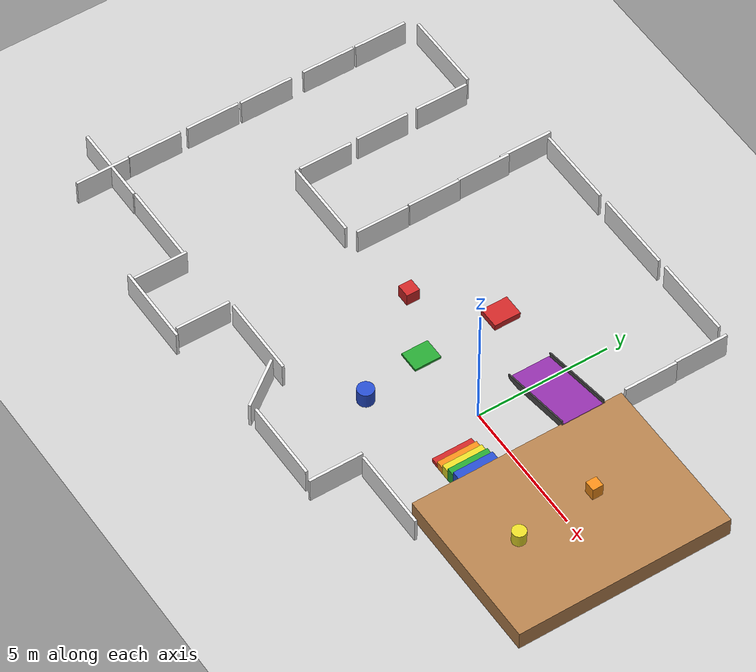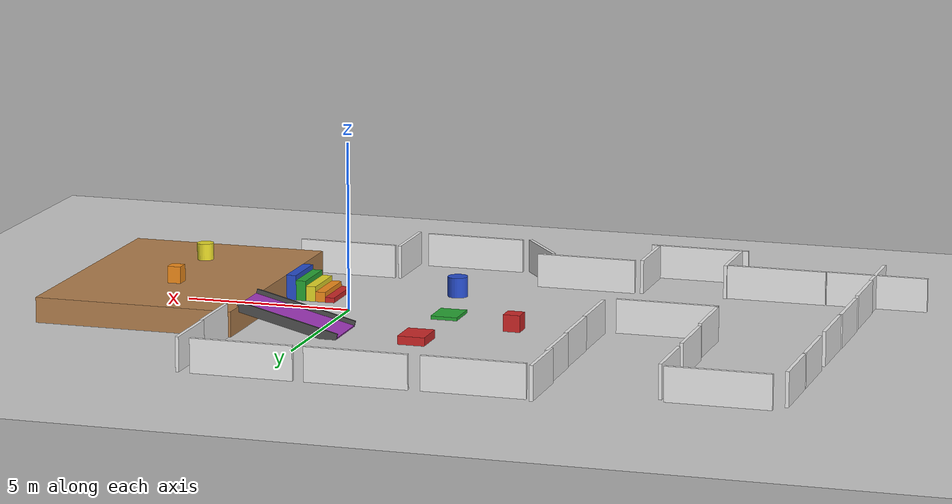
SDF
<sdf version="1.7">
 <world name="two_floor_test">
  <physics type="ode">
   <max_step_size>0.002</max_step_size>
   <real_time_update_rate>500</real_time_update_rate>
   <real_time_factor>1</real_time_factor>
   <type>world</type>
   <iters>500</iters>
  </physics>
  <light name="sun" type="directional">
   <pose>0 0 10 0 -0 0</pose>
   <diffuse>0.8 0.8 0.8 1</diffuse>
   <specular>0.2 0.2 0.2 1</specular>
   <attenuation>
    <range>1000</range>
    <constant>0.9</constant>
    <linear>0.01</linear>
    <quadratic>0.001</quadratic>
   </attenuation>
   <direction>-0.5 0.1 -0.9</direction>
   <spot><inner_angle>0</inner_angle><outer_angle>0</outer_angle><falloff>0</falloff></spot>
  </light>
  <model name="ground_plane">
   <static>1</static>
   <link name="link">
    <collision name="collision">
     <geometry><plane><normal>0 0 1</normal><size>20 20</size></plane></geometry>
     <surface><friction><ode><mu>100</mu><mu2>50</mu2></ode></friction></surface>
    </collision>
    <visual name="visual">
     <cast_shadows>0</cast_shadows>
     <geometry><plane><normal>0 0 1</normal><size>20 20</size></plane></geometry>
     <material>
      <script><uri>file://media/materials/scripts/gazebo.material</uri><name>Gazebo/Grey</name></script>
     </material>
    </visual>
   </link>
  </model>
  <model name="second_floor">
   <static>1</static>
   <pose>5.19898 0 0.375 0 -0 0</pose>
   <link name="link">
    <collision name="collision">
     <geometry><box><size>6 8 0.75</size></box></geometry>
     <surface><friction><ode><mu>100</mu><mu2>50</mu2></ode></friction></surface>
    </collision>
    <visual name="visual">
     <geometry><box><size>6 8 0.75</size></box></geometry>
     <material>
      <script><uri>file://media/materials/scripts/gazebo.material</uri><name>Gazebo/Wood</name></script>
     </material>
    </visual>
   </link>
  </model>
  <model name="stair_step_1">
   <static>1</static>
   <pose>0.865636 -1.50044 0.075 0 -0 0</pose>
   <link name="link">
    <collision name="collision">
     <geometry><box><size>0.3 1.5 0.15</size></box></geometry>
     <surface><friction><ode><mu>100</mu><mu2>50</mu2></ode></friction></surface>
    </collision>
    <visual name="visual">
     <geometry><box><size>0.3 1.5 0.15</size></box></geometry>
     <material>
      <script><uri>file://media/materials/scripts/gazebo.material</uri><name>Gazebo/Red</name></script>
     </material>
    </visual>
   </link>
  </model>
  <model name="stair_step_2">
   <static>1</static>
   <pose>1.14738 -1.5 0.15 0 -0 0</pose>
   <link name="link">
    <collision name="collision">
     <geometry><box><size>0.3 1.5 0.3</size></box></geometry>
     <surface><friction><ode><mu>100</mu><mu2>50</mu2></ode></friction></surface>
    </collision>
    <visual name="visual">
     <geometry><box><size>0.3 1.5 0.3</size></box></geometry>
     <material>
      <script><uri>file://media/materials/scripts/gazebo.material</uri><name>Gazebo/Orange</name></script>
     </material>
    </visual>
   </link>
  </model>
  <model name="stair_step_3">
   <static>1</static>
   <pose>1.44603 -1.5 0.225 0 -0 0</pose>
   <link name="link">
    <collision name="collision">
     <geometry><box><size>0.3 1.5 0.45</size></box></geometry>
     <surface><friction><ode><mu>100</mu><mu2>50</mu2></ode></friction></surface>
    </collision>
    <visual name="visual">
     <geometry><box><size>0.3 1.5 0.45</size></box></geometry>
     <material>
      <script><uri>file://media/materials/scripts/gazebo.material</uri><name>Gazebo/Yellow</name></script>
     </material>
    </visual>
   </link>
  </model>
  <model name="stair_step_4">
   <static>1</static>
   <pose>1.7549 -1.4988 0.3 0 -0 0</pose>
   <link name="link">
    <collision name="collision">
     <geometry><box><size>0.3 1.5 0.6</size></box></geometry>
     <surface><friction><ode><mu>100</mu><mu2>50</mu2></ode></friction></surface>
    </collision>
    <visual name="visual">
     <geometry><box><size>0.3 1.5 0.6</size></box></geometry>
     <material>
      <script><uri>file://media/materials/scripts/gazebo.material</uri><name>Gazebo/Green</name></script>
     </material>
    </visual>
   </link>
  </model>
  <model name="stair_step_5">
   <static>1</static>
   <pose>2.05374 -1.49882 0.375 0 -0 0</pose>
   <link name="link">
    <collision name="collision">
     <geometry><box><size>0.3 1.5 0.75</size></box></geometry>
     <surface><friction><ode><mu>100</mu><mu2>50</mu2></ode></friction></surface>
    </collision>
    <visual name="visual">
     <geometry><box><size>0.3 1.5 0.75</size></box></geometry>
     <material>
      <script><uri>file://media/materials/scripts/gazebo.material</uri><name>Gazebo/Blue</name></script>
     </material>
    </visual>
   </link>
  </model>
  <model name="ramp">
   <static>1</static>
   <pose>0.75 2.5 0.375 0 -0.245 0</pose>
   <link name="link">
    <collision name="collision">
     <geometry><box><size>3.09 1.5 0.05</size></box></geometry>
     <surface><friction><ode><mu>100</mu><mu2>50</mu2></ode></friction></surface>
    </collision>
    <visual name="visual">
     <geometry><box><size>3.09 1.5 0.05</size></box></geometry>
     <material>
      <script><uri>file://media/materials/scripts/gazebo.material</uri><name>Gazebo/Purple</name></script>
     </material>
    </visual>
   </link>
  </model>
  <model name="ramp_wall_left">
   <static>1</static>
   <pose>0.75 1.7 0.375 0 -0.245 0</pose>
   <link name="link">
    <collision name="collision"><geometry><box><size>3.09 0.05 0.3</size></box></geometry></collision>
    <visual name="visual">
     <geometry><box><size>3.09 0.05 0.3</size></box></geometry>
     <material>
      <script><uri>file://media/materials/scripts/gazebo.material</uri><name>Gazebo/DarkGrey</name></script>
     </material>
    </visual>
   </link>
  </model>
  <model name="ramp_wall_right">
   <static>1</static>
   <pose>0.75 3.3 0.375 0 -0.245 0</pose>
   <link name="link">
    <collision name="collision"><geometry><box><size>3.09 0.05 0.3</size></box></geometry></collision>
    <visual name="visual">
     <geometry><box><size>3.09 0.05 0.3</size></box></geometry>
     <material>
      <script><uri>file://media/materials/scripts/gazebo.material</uri><name>Gazebo/DarkGrey</name></script>
     </material>
    </visual>
   </link>
  </model>
  <model name="obstacle_box_1">
   <static>1</static>
   <pose>-5.28721 0.823021 0.25 0 -0 0</pose>
   <link name="link">
    <collision name="collision"><geometry><box><size>0.5 0.5 0.5</size></box></geometry></collision>
    <visual name="visual">
     <geometry><box><size>0.5 0.5 0.5</size></box></geometry>
     <material>
      <script><uri>file://media/materials/scripts/gazebo.material</uri><name>Gazebo/Red</name></script>
     </material>
    </visual>
   </link>
  </model>
  <model name="obstacle_cylinder">
   <static>1</static>
   <pose>-2.50786 -2.66536 0.3 0 -0 0</pose>
   <link name="link">
    <collision name="collision">
     <geometry><cylinder><radius>0.3</radius><length>0.6</length></cylinder></geometry>
    </collision>
    <visual name="visual">
     <geometry><cylinder><radius>0.3</radius><length>0.6</length></cylinder></geometry>
     <material>
      <script><uri>file://media/materials/scripts/gazebo.material</uri><name>Gazebo/Blue</name></script>
     </material>
    </visual>
   </link>
  </model>
  <model name="obstacle_small_step">
   <static>1</static>
   <pose>-3.00223 -0.205601 0.05 0 -0 0</pose>
   <link name="link">
    <collision name="collision">
     <geometry><box><size>0.8 1 0.1</size></box></geometry>
     <surface><friction><ode><mu>100</mu><mu2>50</mu2></ode></friction></surface>
    </collision>
    <visual name="visual">
     <geometry><box><size>0.8 1 0.1</size></box></geometry>
     <material>
      <script><uri>file://media/materials/scripts/gazebo.material</uri><name>Gazebo/Green</name></script>
     </material>
    </visual>
   </link>
  </model>
  <model name="obstacle_large_step">
   <static>1</static>
   <pose>-3.00224 2.88248 0.125 0 -0 0</pose>
   <link name="link">
    <collision name="collision">
     <geometry><box><size>0.8 1 0.25</size></box></geometry>
     <surface><friction><ode><mu>100</mu><mu2>50</mu2></ode></friction></surface>
    </collision>
    <visual name="visual">
     <geometry><box><size>0.8 1 0.25</size></box></geometry>
     <material>
      <script><uri>file://media/materials/scripts/gazebo.material</uri><name>Gazebo/Red</name></script>
     </material>
    </visual>
   </link>
  </model>
  <model name="obstacle_2f_box">
   <static>1</static>
   <pose>5 1 1 0 -0 0</pose>
   <link name="link">
    <collision name="collision"><geometry><box><size>0.4 0.4 0.5</size></box></geometry></collision>
    <visual name="visual">
     <geometry><box><size>0.4 0.4 0.5</size></box></geometry>
     <material>
      <script><uri>file://media/materials/scripts/gazebo.material</uri><name>Gazebo/Orange</name></script>
     </material>
    </visual>
   </link>
  </model>
  <model name="obstacle_2f_cylinder">
   <static>1</static>
   <pose>5.22236 -1.99827 1 0 -0 0</pose>
   <link name="link">
    <collision name="collision">
     <geometry><cylinder><radius>0.25</radius><length>0.5</length></cylinder></geometry>
    </collision>
    <visual name="visual">
     <geometry><cylinder><radius>0.25</radius><length>0.5</length></cylinder></geometry>
     <material>
      <script><uri>file://media/materials/scripts/gazebo.material</uri><name>Gazebo/Yellow</name></script>
     </material>
    </visual>
   </link>
  </model>
  <model name="wall_stairs">
   <static>1</static>
   <pose>1.5 -4.3782 0.5 0 -0 0</pose>
   <link name="link">
    <collision name="collision"><geometry><box><size>3 0.1 1</size></box></geometry></collision>
    <visual name="visual">
     <geometry><box><size>3 0.1 1</size></box></geometry>
     <material>
      <script><uri>file://media/materials/scripts/gazebo.material</uri><name>Gazebo/White</name></script>
     </material>
    </visual>
   </link>
  </model>
  <model name="wall_ramp">
   <static>1</static>
   <pose>2.30626 5.05536 0.5 0 -0 0</pose>
   <link name="link">
    <collision name="collision"><geometry><box><size>0.1 2 1</size></box></geometry></collision>
    <visual name="visual">
     <geometry><box><size>0.1 2 1</size></box></geometry>
     <material>
      <script><uri>file://media/materials/scripts/gazebo.material</uri><name>Gazebo/White</name></script>
     </material>
    </visual>
   </link>
  </model>
  <gravity>0 0 -9.8</gravity>
  <magnetic_field>6e-06 2.3e-05 -4.2e-05</magnetic_field>
  <atmosphere type="adiabatic"/>
  <scene><ambient>0.4 0.4 0.4 1</ambient><background>0.7 0.7 0.7 1</background><shadows>1</shadows></scene>
  <spherical_coordinates>
   <surface_model>EARTH_WGS84</surface_model>
   <latitude_deg>0</latitude_deg>
   <longitude_deg>0</longitude_deg>
   <elevation>0</elevation>
   <heading_deg>0</heading_deg>
  </spherical_coordinates>
  <model name="wall_ramp_clone">
   <static>1</static>
   <pose>2.26766 7.05725 0.5 0 -0 0</pose>
   <link name="link">
    <collision name="collision"><geometry><box><size>0.1 2 1</size></box></geometry></collision>
    <visual name="visual">
     <geometry><box><size>0.1 2 1</size></box></geometry>
     <material>
      <script><uri>file://media/materials/scripts/gazebo.material</uri><name>Gazebo/White</name></script>
     </material>
    </visual>
   </link>
  </model>
  <model name="wall_ramp_clone_2">
   <static>1</static>
   <pose>-7.85003 1.46144 0.5 0 -0 0</pose>
   <link name="link">
    <collision name="collision"><geometry><box><size>0.1 2 1</size></box></geometry></collision>
    <visual name="visual">
     <geometry><box><size>0.1 2 1</size></box></geometry>
     <material>
      <script><uri>file://media/materials/scripts/gazebo.material</uri><name>Gazebo/White</name></script>
     </material>
    </visual>
   </link>
  </model>
  <model name="wall_stairs_clone">
   <static>1</static>
   <pose>-1.9839 -6.18957 0.5 0 -0 0</pose>
   <link name="link">
    <collision name="collision"><geometry><box><size>3 0.1 1</size></box></geometry></collision>
    <visual name="visual">
     <geometry><box><size>3 0.1 1</size></box></geometry>
     <material>
      <script><uri>file://media/materials/scripts/gazebo.material</uri><name>Gazebo/White</name></script>
     </material>
    </visual>
   </link>
  </model>
  <model name="wall_stairs_clone_0">
   <static>1</static>
   <pose>-5.94725 -4.54683 0.5 0 -0 0</pose>
   <link name="link">
    <collision name="collision"><geometry><box><size>3 0.1 1</size></box></geometry></collision>
    <visual name="visual">
     <geometry><box><size>3 0.1 1</size></box></geometry>
     <material>
      <script><uri>file://media/materials/scripts/gazebo.material</uri><name>Gazebo/White</name></script>
     </material>
    </visual>
   </link>
  </model>
  <model name="wall_stairs_clone_1">
   <static>1</static>
   <pose>0.380784 8.04789 0.5 0 -0 0</pose>
   <link name="link">
    <collision name="collision"><geometry><box><size>3 0.1 1</size></box></geometry></collision>
    <visual name="visual">
     <geometry><box><size>3 0.1 1</size></box></geometry>
     <material>
      <script><uri>file://media/materials/scripts/gazebo.material</uri><name>Gazebo/White</name></script>
     </material>
    </visual>
   </link>
  </model>
  <model name="wall_stairs_clone_2">
   <static>1</static>
   <pose>-2.93126 8.02543 0.5 0 -0 0</pose>
   <link name="link">
    <collision name="collision"><geometry><box><size>3 0.1 1</size></box></geometry></collision>
    <visual name="visual">
     <geometry><box><size>3 0.1 1</size></box></geometry>
     <material>
      <script><uri>file://media/materials/scripts/gazebo.material</uri><name>Gazebo/White</name></script>
     </material>
    </visual>
   </link>
  </model>
  <model name="wall_stairs_clone_3">
   <static>1</static>
   <pose>-6.2784 8.00242 0.5 0 -0 0</pose>
   <link name="link">
    <collision name="collision"><geometry><box><size>3 0.1 1</size></box></geometry></collision>
    <visual name="visual">
     <geometry><box><size>3 0.1 1</size></box></geometry>
     <material>
      <script><uri>file://media/materials/scripts/gazebo.material</uri><name>Gazebo/White</name></script>
     </material>
    </visual>
   </link>
  </model>
  <model name="wall_ramp_clone_2_clone">
   <static>1</static>
   <pose>-4.29434 -5.50248 0.5 0 -0 0.645112</pose>
   <link name="link">
    <collision name="collision"><geometry><box><size>0.1 2 1</size></box></geometry></collision>
    <visual name="visual">
     <geometry><box><size>0.1 2 1</size></box></geometry>
     <material>
      <script><uri>file://media/materials/scripts/gazebo.material</uri><name>Gazebo/White</name></script>
     </material>
    </visual>
   </link>
  </model>
  <model name="wall_ramp_clone_2_clone_0">
   <static>1</static>
   <pose>-0.152199 -5.31861 0.5 0 -0 0</pose>
   <link name="link">
    <collision name="collision"><geometry><box><size>0.1 2 1</size></box></geometry></collision>
    <visual name="visual">
     <geometry><box><size>0.1 2 1</size></box></geometry>
     <material>
      <script><uri>file://media/materials/scripts/gazebo.material</uri><name>Gazebo/White</name></script>
     </material>
    </visual>
   </link>
  </model>
  <model name="wall_ramp_clone_2_clone_1">
   <static>1</static>
   <pose>-7.64634 -5.58073 0.5 0 -0 0</pose>
   <link name="link">
    <collision name="collision"><geometry><box><size>0.1 2 1</size></box></geometry></collision>
    <visual name="visual">
     <geometry><box><size>0.1 2 1</size></box></geometry>
     <material>
      <script><uri>file://media/materials/scripts/gazebo.material</uri><name>Gazebo/White</name></script>
     </material>
    </visual>
   </link>
  </model>
  <model name="wall_ramp_clone_2_clone_2">
   <static>1</static>
   <pose>-10.1757 -5.63925 0.5 0 -0 0</pose>
   <link name="link">
    <collision name="collision"><geometry><box><size>0.1 2 1</size></box></geometry></collision>
    <visual name="visual">
     <geometry><box><size>0.1 2 1</size></box></geometry>
     <material>
      <script><uri>file://media/materials/scripts/gazebo.material</uri><name>Gazebo/White</name></script>
     </material>
    </visual>
   </link>
  </model>
  <model name="wall_ramp_clone_2_clone_3">
   <static>1</static>
   <pose>-7.86965 3.51111 0.5 0 -0 0</pose>
   <link name="link">
    <collision name="collision"><geometry><box><size>0.1 2 1</size></box></geometry></collision>
    <visual name="visual">
     <geometry><box><size>0.1 2 1</size></box></geometry>
     <material>
      <script><uri>file://media/materials/scripts/gazebo.material</uri><name>Gazebo/White</name></script>
     </material>
    </visual>
   </link>
  </model>
  <model name="wall_ramp_clone_2_clone_4">
   <static>1</static>
   <pose>-7.89941 5.47788 0.5 0 -0 0</pose>
   <link name="link">
    <collision name="collision"><geometry><box><size>0.1 2 1</size></box></geometry></collision>
    <visual name="visual">
     <geometry><box><size>0.1 2 1</size></box></geometry>
     <material>
      <script><uri>file://media/materials/scripts/gazebo.material</uri><name>Gazebo/White</name></script>
     </material>
    </visual>
   </link>
  </model>
  <model name="wall_stairs_clone_clone">
   <static>1</static>
   <pose>-8.89798 -6.70854 0.5 0 -0 0</pose>
   <link name="link">
    <collision name="collision"><geometry><box><size>3 0.1 1</size></box></geometry></collision>
    <visual name="visual">
     <geometry><box><size>3 0.1 1</size></box></geometry>
     <material>
      <script><uri>file://media/materials/scripts/gazebo.material</uri><name>Gazebo/White</name></script>
     </material>
    </visual>
   </link>
  </model>
  <model name="wall_stairs_clone_clone_0">
   <static>1</static>
   <pose>-11.6931 -4.75098 0.5 0 -0 0</pose>
   <link name="link">
    <collision name="collision"><geometry><box><size>3 0.1 1</size></box></geometry></collision>
    <visual name="visual">
     <geometry><box><size>3 0.1 1</size></box></geometry>
     <material>
      <script><uri>file://media/materials/scripts/gazebo.material</uri><name>Gazebo/White</name></script>
     </material>
    </visual>
   </link>
  </model>
  <model name="wall_stairs_clone_clone_1">
   <static>1</static>
   <pose>-14.7245 -4.77766 0.5 0 -0 0</pose>
   <link name="link">
    <collision name="collision"><geometry><box><size>3 0.1 1</size></box></geometry></collision>
    <visual name="visual">
     <geometry><box><size>3 0.1 1</size></box></geometry>
     <material>
      <script><uri>file://media/materials/scripts/gazebo.material</uri><name>Gazebo/White</name></script>
     </material>
    </visual>
   </link>
  </model>
  <model name="wall_stairs_clone_clone_2">
   <static>1</static>
   <pose>-9.67691 0.245594 0.5 0 -0 0</pose>
   <link name="link">
    <collision name="collision"><geometry><box><size>3 0.1 1</size></box></geometry></collision>
    <visual name="visual">
     <geometry><box><size>3 0.1 1</size></box></geometry>
     <material>
      <script><uri>file://media/materials/scripts/gazebo.material</uri><name>Gazebo/White</name></script>
     </material>
    </visual>
   </link>
  </model>
  <model name="wall_stairs_clone_clone_3">
   <static>1</static>
   <pose>-12.8865 7.17845 0.5 0 -0 0</pose>
   <link name="link">
    <collision name="collision"><geometry><box><size>3 0.1 1</size></box></geometry></collision>
    <visual name="visual">
     <geometry><box><size>3 0.1 1</size></box></geometry>
     <material>
      <script><uri>file://media/materials/scripts/gazebo.material</uri><name>Gazebo/White</name></script>
     </material>
    </visual>
   </link>
  </model>
  <model name="wall_ramp_clone_2_clone_4_clone">
   <static>1</static>
   <pose>-11.1694 1.37105 0.5 0 -0 0</pose>
   <link name="link">
    <collision name="collision"><geometry><box><size>0.1 2 1</size></box></geometry></collision>
    <visual name="visual">
     <geometry><box><size>0.1 2 1</size></box></geometry>
     <material>
      <script><uri>file://media/materials/scripts/gazebo.material</uri><name>Gazebo/White</name></script>
     </material>
    </visual>
   </link>
  </model>
  <model name="wall_ramp_clone_2_clone_4_clone_0">
   <static>1</static>
   <pose>-11.2244 3.65144 0.5 0 -0 0</pose>
   <link name="link">
    <collision name="collision"><geometry><box><size>0.1 2 1</size></box></geometry></collision>
    <visual name="visual">
     <geometry><box><size>0.1 2 1</size></box></geometry>
     <material>
      <script><uri>file://media/materials/scripts/gazebo.material</uri><name>Gazebo/White</name></script>
     </material>
    </visual>
   </link>
  </model>
  <model name="wall_ramp_clone_2_clone_4_clone_1">
   <static>1</static>
   <pose>-11.2395 6.03016 0.5 0 -0 0</pose>
   <link name="link">
    <collision name="collision"><geometry><box><size>0.1 2 1</size></box></geometry></collision>
    <visual name="visual">
     <geometry><box><size>0.1 2 1</size></box></geometry>
     <material>
      <script><uri>file://media/materials/scripts/gazebo.material</uri><name>Gazebo/White</name></script>
     </material>
    </visual>
   </link>
  </model>
  <model name="wall_ramp_clone_2_clone_4_clone_2">
   <static>1</static>
   <pose>-14.6906 5.82366 0.5 0 -0 0</pose>
   <link name="link">
    <collision name="collision"><geometry><box><size>0.1 2 1</size></box></geometry></collision>
    <visual name="visual">
     <geometry><box><size>0.1 2 1</size></box></geometry>
     <material>
      <script><uri>file://media/materials/scripts/gazebo.material</uri><name>Gazebo/White</name></script>
     </material>
    </visual>
   </link>
  </model>
  <model name="wall_ramp_clone_2_clone_4_clone_3">
   <static>1</static>
   <pose>-14.6916 3.74644 0.5 0 -0 0</pose>
   <link name="link">
    <collision name="collision"><geometry><box><size>0.1 2 1</size></box></geometry></collision>
    <visual name="visual">
     <geometry><box><size>0.1 2 1</size></box></geometry>
     <material>
      <script><uri>file://media/materials/scripts/gazebo.material</uri><name>Gazebo/White</name></script>
     </material>
    </visual>
   </link>
  </model>
  <model name="wall_ramp_clone_2_clone_4_clone_4">
   <static>1</static>
   <pose>-14.687 1.26724 0.5 0 -0 0</pose>
   <link name="link">
    <collision name="collision"><geometry><box><size>0.1 2 1</size></box></geometry></collision>
    <visual name="visual">
     <geometry><box><size>0.1 2 1</size></box></geometry>
     <material>
      <script><uri>file://media/materials/scripts/gazebo.material</uri><name>Gazebo/White</name></script>
     </material>
    </visual>
   </link>
  </model>
  <model name="wall_ramp_clone_2_clone_4_clone_4_clone">
   <static>1</static>
   <pose>-14.7047 -0.825585 0.5 0 -0 0</pose>
   <link name="link">
    <collision name="collision"><geometry><box><size>0.1 2 1</size></box></geometry></collision>
    <visual name="visual">
     <geometry><box><size>0.1 2 1</size></box></geometry>
     <material>
      <script><uri>file://media/materials/scripts/gazebo.material</uri><name>Gazebo/White</name></script>
     </material>
    </visual>
   </link>
  </model>
  <model name="wall_ramp_clone_2_clone_4_clone_4_clone_0">
   <static>1</static>
   <pose>-14.6813 -3.10173 0.5 0 -0 0</pose>
   <link name="link">
    <collision name="collision"><geometry><box><size>0.1 2 1</size></box></geometry></collision>
    <visual name="visual">
     <geometry><box><size>0.1 2 1</size></box></geometry>
     <material>
      <script><uri>file://media/materials/scripts/gazebo.material</uri><name>Gazebo/White</name></script>
     </material>
    </visual>
   </link>
  </model>
  <model name="wall_ramp_clone_2_clone_4_clone_4_clone_1">
   <static>1</static>
   <pose>-14.6594 -5.12697 0.5 0 -0 0</pose>
   <link name="link">
    <collision name="collision"><geometry><box><size>0.1 2 1</size></box></geometry></collision>
    <visual name="visual">
     <geometry><box><size>0.1 2 1</size></box></geometry>
     <material>
      <script><uri>file://media/materials/scripts/gazebo.material</uri><name>Gazebo/White</name></script>
     </material>
    </visual>
   </link>
  </model>
  <model name="wall_ramp_clone_2_clone_4_clone_4_clone_2">
   <static>1</static>
   <pose>-7.96095 7.18911 0.5 0 -0 0</pose>
   <link name="link">
    <collision name="collision"><geometry><box><size>0.1 2 1</size></box></geometry></collision>
    <visual name="visual">
     <geometry><box><size>0.1 2 1</size></box></geometry>
     <material>
      <script><uri>file://media/materials/scripts/gazebo.material</uri><name>Gazebo/White</name></script>
     </material>
    </visual>
   </link>
  </model>
 </world>
</sdf>
